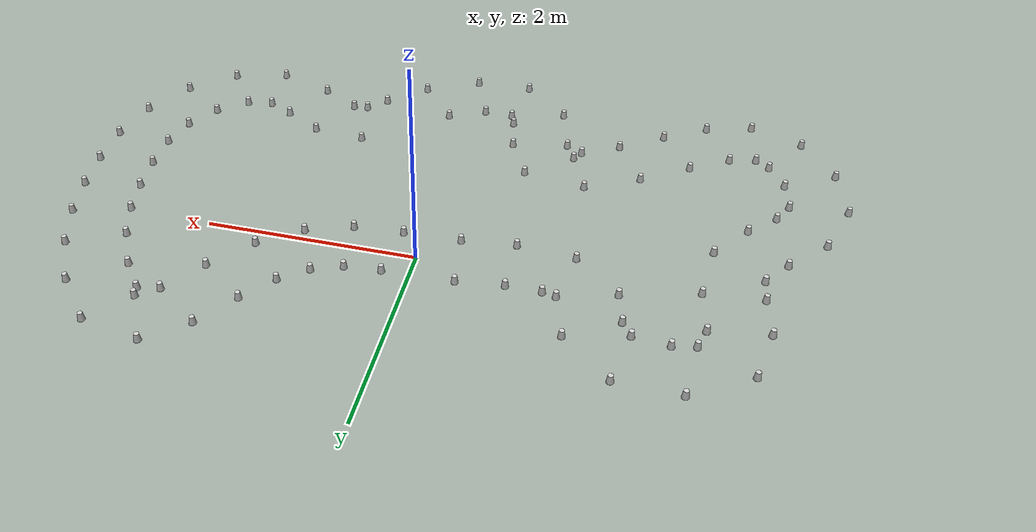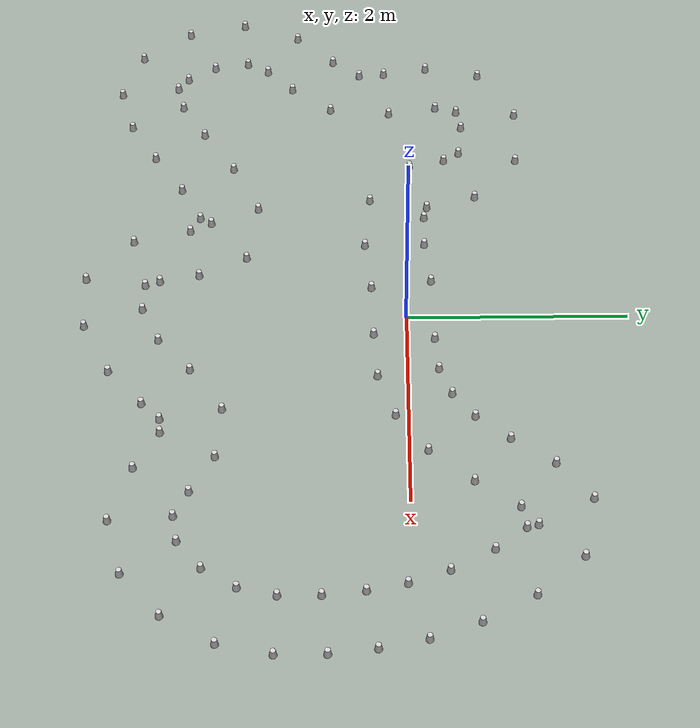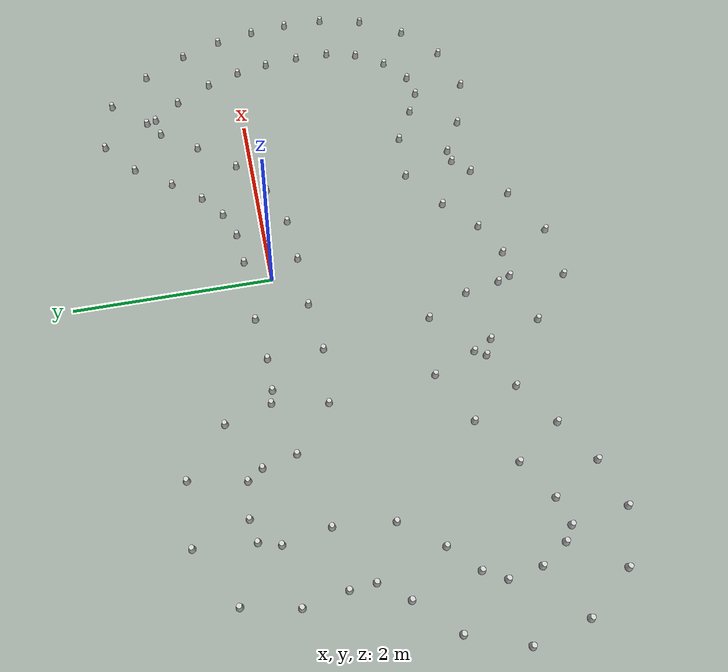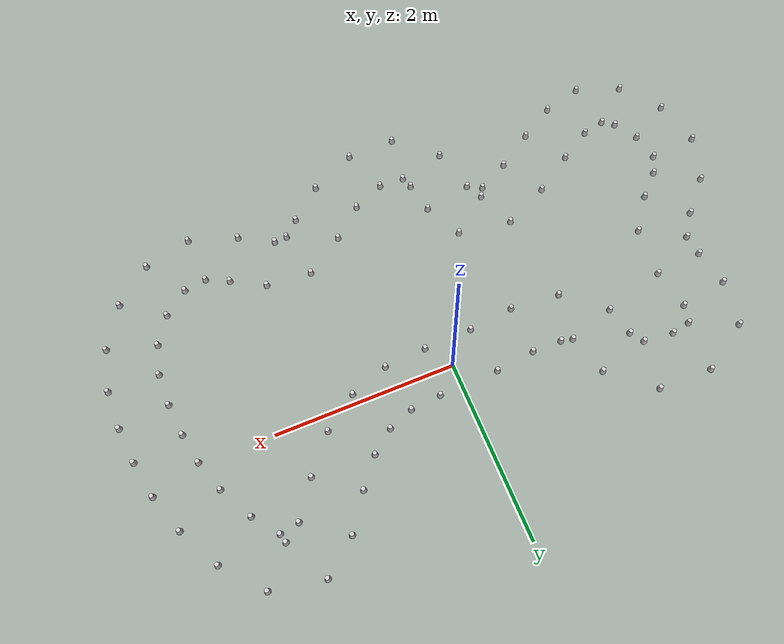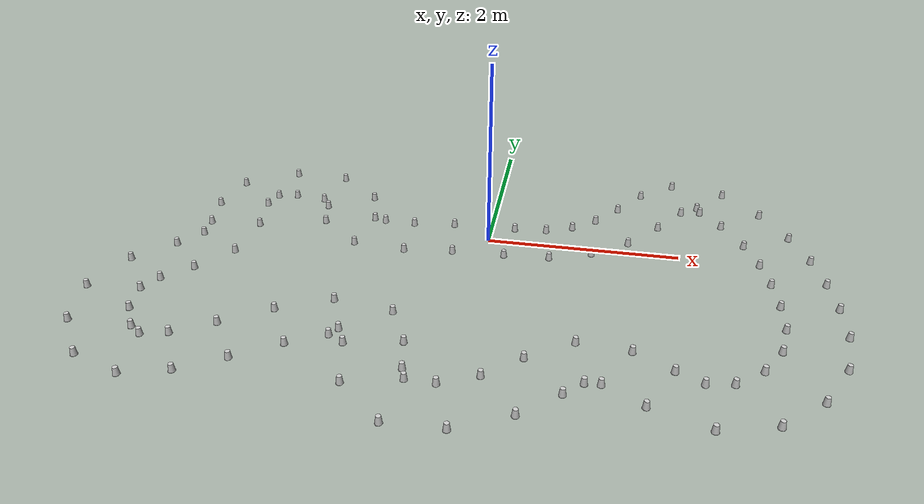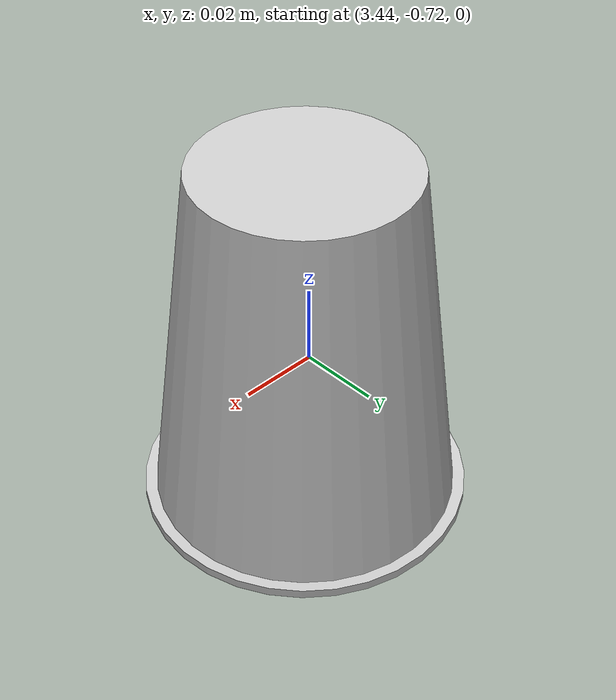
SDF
<?xml version='1.0' encoding='UTF-8'?>
<sdf version="1.4">
  <model name="some track">
    <include>
      <uri>model://cone_yellow</uri>
      <pose>0.1988275189589861 -0.29576511608822 0 0 0 0</pose>
      <name>cone_right_0</name>
    </include>
    <include>
      <uri>model://cone_yellow</uri>
      <pose>0.6696341616640438 -0.26491270518510013 0 0 0 0</pose>
      <name>cone_right_1</name>
    </include>
    <include>
      <uri>model://cone_yellow</uri>
      <pose>1.1004261335335566 -0.11217319267272571 0 0 0 0</pose>
      <name>cone_right_2</name>
    </include>
    <include>
      <uri>model://cone_yellow</uri>
      <pose>1.478573687063939 0.16465614905622017 0 0 0 0</pose>
      <name>cone_right_3</name>
    </include>
    <include>
      <uri>model://cone_yellow</uri>
      <pose>1.8005107312177255 0.5505216996905153 0 0 0 0</pose>
      <name>cone_right_4</name>
    </include>
    <include>
      <uri>model://cone_yellow</uri>
      <pose>2.067354395802949 0.9315547755825158 0 0 0 0</pose>
      <name>cone_right_5</name>
    </include>
    <include>
      <uri>model://cone_yellow</uri>
      <pose>2.249457929534375 1.0683764420313393 0 0 0 0</pose>
      <name>cone_right_6</name>
    </include>
    <include>
      <uri>model://cone_yellow</uri>
      <pose>2.275179273962964 0.969632531827274 0 0 0 0</pose>
      <name>cone_right_7</name>
    </include>
    <include>
      <uri>model://cone_yellow</uri>
      <pose>2.48731289048625 0.6962438414599963 0 0 0 0</pose>
      <name>cone_right_8</name>
    </include>
    <include>
      <uri>model://cone_yellow</uri>
      <pose>2.689026071638628 0.3193873764353247 0 0 0 0</pose>
      <name>cone_right_9</name>
    </include>
    <include>
      <uri>model://cone_yellow</uri>
      <pose>2.8126661601192176 -0.03343255558440286 0 0 0 0</pose>
      <name>cone_right_10</name>
    </include>
    <include>
      <uri>model://cone_yellow</uri>
      <pose>2.8812387136260225 -0.3772384883664753 0 0 0 0</pose>
      <name>cone_right_11</name>
    </include>
    <include>
      <uri>model://cone_yellow</uri>
      <pose>2.9213577538996303 -0.7437806817480641 0 0 0 0</pose>
      <name>cone_right_12</name>
    </include>
    <include>
      <uri>model://cone_yellow</uri>
      <pose>2.922138235468108 -1.1094339618953752 0 0 0 0</pose>
      <name>cone_right_13</name>
    </include>
    <include>
      <uri>model://cone_yellow</uri>
      <pose>2.8427176408587744 -1.4425361449432699 0 0 0 0</pose>
      <name>cone_right_14</name>
    </include>
    <include>
      <uri>model://cone_yellow</uri>
      <pose>2.6548703380218885 -1.7433312806151555 0 0 0 0</pose>
      <name>cone_right_15</name>
    </include>
    <include>
      <uri>model://cone_yellow</uri>
      <pose>2.388152420267223 -1.9586136310541635 0 0 0 0</pose>
      <name>cone_right_16</name>
    </include>
    <include>
      <uri>model://cone_yellow</uri>
      <pose>2.1373012560654523 -1.999391551072497 0 0 0 0</pose>
      <name>cone_right_17</name>
    </include>
    <include>
      <uri>model://cone_yellow</uri>
      <pose>1.8920212236398 -1.876843366306812 0 0 0 0</pose>
      <name>cone_right_18</name>
    </include>
    <include>
      <uri>model://cone_yellow</uri>
      <pose>1.5292710419879616 -1.6702764793476783 0 0 0 0</pose>
      <name>cone_right_19</name>
    </include>
    <include>
      <uri>model://cone_yellow</uri>
      <pose>1.0240276393759478 -1.6269627157081512 0 0 0 0</pose>
      <name>cone_right_20</name>
    </include>
    <include>
      <uri>model://cone_yellow</uri>
      <pose>0.5892466370784701 -1.9257541432241643 0 0 0 0</pose>
      <name>cone_right_21</name>
    </include>
    <include>
      <uri>model://cone_yellow</uri>
      <pose>0.250976784596718 -2.224629569718763 0 0 0 0</pose>
      <name>cone_right_22</name>
    </include>
    <include>
      <uri>model://cone_yellow</uri>
      <pose>-0.10549330255491296 -2.385936186840274 0 0 0 0</pose>
      <name>cone_right_23</name>
    </include>
    <include>
      <uri>model://cone_yellow</uri>
      <pose>-0.3877479345921508 -2.3757527250448307 0 0 0 0</pose>
      <name>cone_right_24</name>
    </include>
    <include>
      <uri>model://cone_yellow</uri>
      <pose>-0.4328026240077577 -2.244745992576913 0 0 0 0</pose>
      <name>cone_right_25</name>
    </include>
    <include>
      <uri>model://cone_yellow</uri>
      <pose>-0.5017454618362109 -1.8886642571496879 0 0 0 0</pose>
      <name>cone_right_26</name>
    </include>
    <include>
      <uri>model://cone_yellow</uri>
      <pose>-0.7075696544246372 -1.4597034508885602 0 0 0 0</pose>
      <name>cone_right_27</name>
    </include>
    <include>
      <uri>model://cone_yellow</uri>
      <pose>-1.312971773285747 -1.3668817337472583 0 0 0 0</pose>
      <name>cone_right_28</name>
    </include>
    <include>
      <uri>model://cone_yellow</uri>
      <pose>-1.8292101310521995 -1.614574961932526 0 0 0 0</pose>
      <name>cone_right_29</name>
    </include>
    <include>
      <uri>model://cone_yellow</uri>
      <pose>-2.2815414466390322 -1.9087867119301134 0 0 0 0</pose>
      <name>cone_right_30</name>
    </include>
    <include>
      <uri>model://cone_yellow</uri>
      <pose>-2.6539410010885267 -2.1311763426815804 0 0 0 0</pose>
      <name>cone_right_31</name>
    </include>
    <include>
      <uri>model://cone_yellow</uri>
      <pose>-2.911773890355478 -2.1927423226869456 0 0 0 0</pose>
      <name>cone_right_32</name>
    </include>
    <include>
      <uri>model://cone_yellow</uri>
      <pose>-3.0425935645850166 -2.0984135288440684 0 0 0 0</pose>
      <name>cone_right_33</name>
    </include>
    <include>
      <uri>model://cone_yellow</uri>
      <pose>-3.201195268847548 -1.8383048991844158 0 0 0 0</pose>
      <name>cone_right_34</name>
    </include>
    <include>
      <uri>model://cone_yellow</uri>
      <pose>-3.2556186123603976 -1.5162212111869535 0 0 0 0</pose>
      <name>cone_right_35</name>
    </include>
    <include>
      <uri>model://cone_yellow</uri>
      <pose>-3.1461559568503885 -1.3145737666766437 0 0 0 0</pose>
      <name>cone_right_36</name>
    </include>
    <include>
      <uri>model://cone_yellow</uri>
      <pose>-2.894749010851062 -1.0691156432634346 0 0 0 0</pose>
      <name>cone_right_37</name>
    </include>
    <include>
      <uri>model://cone_yellow</uri>
      <pose>-2.6102504265091606 -0.692942171421458 0 0 0 0</pose>
      <name>cone_right_38</name>
    </include>
    <include>
      <uri>model://cone_yellow</uri>
      <pose>-2.5537825610118228 -0.1260728643715388 0 0 0 0</pose>
      <name>cone_right_39</name>
    </include>
    <include>
      <uri>model://cone_yellow</uri>
      <pose>-2.6288406626750547 0.32756512917090447 0 0 0 0</pose>
      <name>cone_right_40</name>
    </include>
    <include>
      <uri>model://cone_yellow</uri>
      <pose>-2.5707583390659434 0.5310704402992645 0 0 0 0</pose>
      <name>cone_right_41</name>
    </include>
    <include>
      <uri>model://cone_yellow</uri>
      <pose>-2.358020035678961 0.5719439911957973 0 0 0 0</pose>
      <name>cone_right_42</name>
    </include>
    <include>
      <uri>model://cone_yellow</uri>
      <pose>-2.0188464912805832 0.5368809701956367 0 0 0 0</pose>
      <name>cone_right_43</name>
    </include>
    <include>
      <uri>model://cone_yellow</uri>
      <pose>-1.9237195483654574 0.3914882140836342 0 0 0 0</pose>
      <name>cone_right_44</name>
    </include>
    <include>
      <uri>model://cone_yellow</uri>
      <pose>-1.849562622685685 0.062238912862124615 0 0 0 0</pose>
      <name>cone_right_45</name>
    </include>
    <include>
      <uri>model://cone_yellow</uri>
      <pose>-1.4125548750441195 -0.3176125535710472 0 0 0 0</pose>
      <name>cone_right_46</name>
    </include>
    <include>
      <uri>model://cone_yellow</uri>
      <pose>-0.8550175847953118 -0.36791540703025316 0 0 0 0</pose>
      <name>cone_right_47</name>
    </include>
    <include>
      <uri>model://cone_yellow</uri>
      <pose>-0.344796184995294 -0.311553601814133 0 0 0 0</pose>
      <name>cone_right_48</name>
    </include>
    <include>
      <uri>model://cone_blue</uri>
      <pose>0.2523807274147874 0.2516214510323932 0 0 0 0</pose>
      <name>cone_left_0</name>
    </include>
    <include>
      <uri>model://cone_blue</uri>
      <pose>0.5940569259746471 0.27986989498266357 0 0 0 0</pose>
      <name>cone_left_1</name>
    </include>
    <include>
      <uri>model://cone_blue</uri>
      <pose>0.872324774572881 0.3882963568907748 0 0 0 0</pose>
      <name>cone_left_2</name>
    </include>
    <include>
      <uri>model://cone_blue</uri>
      <pose>1.119600238128676 0.5813551566858548 0 0 0 0</pose>
      <name>cone_left_3</name>
    </include>
    <include>
      <uri>model://cone_blue</uri>
      <pose>1.3593736301157024 0.8790000978102448 0 0 0 0</pose>
      <name>cone_left_4</name>
    </include>
    <include>
      <uri>model://cone_blue</uri>
      <pose>1.62190767826895 1.2541647906753304 0 0 0 0</pose>
      <name>cone_left_5</name>
    </include>
    <include>
      <uri>model://cone_blue</uri>
      <pose>1.9881012125886426 1.5523110104466866 0 0 0 0</pose>
      <name>cone_left_6</name>
    </include>
    <include>
      <uri>model://cone_blue</uri>
      <pose>2.5630295924372106 1.4382925302848708 0 0 0 0</pose>
      <name>cone_left_7</name>
    </include>
    <include>
      <uri>model://cone_blue</uri>
      <pose>2.9313011151554096 1.0208581608532228 0 0 0 0</pose>
      <name>cone_left_8</name>
    </include>
    <include>
      <uri>model://cone_blue</uri>
      <pose>3.1827097679961276 0.5618258386289219 0 0 0 0</pose>
      <name>cone_left_9</name>
    </include>
    <include>
      <uri>model://cone_blue</uri>
      <pose>3.3378425766095354 0.12993736686887092 0 0 0 0</pose>
      <name>cone_left_10</name>
    </include>
    <include>
      <uri>model://cone_blue</uri>
      <pose>3.423280857247542 -0.284016631818841 0 0 0 0</pose>
      <name>cone_left_11</name>
    </include>
    <include>
      <uri>model://cone_blue</uri>
      <pose>3.46888371594725 -0.6916719407939007 0 0 0 0</pose>
      <name>cone_left_12</name>
    </include>
    <include>
      <uri>model://cone_blue</uri>
      <pose>3.471782724465998 -1.1292060562267385 0 0 0 0</pose>
      <name>cone_left_13</name>
    </include>
    <include>
      <uri>model://cone_blue</uri>
      <pose>3.369274518125601 -1.6014004109158564 0 0 0 0</pose>
      <name>cone_left_14</name>
    </include>
    <include>
      <uri>model://cone_blue</uri>
      <pose>3.103693110961573 -2.061227676459355 0 0 0 0</pose>
      <name>cone_left_15</name>
    </include>
    <include>
      <uri>model://cone_blue</uri>
      <pose>2.7016285962785136 -2.4105347381882942 0 0 0 0</pose>
      <name>cone_left_16</name>
    </include>
    <include>
      <uri>model://cone_blue</uri>
      <pose>2.17750751956934 -2.547919997349494 0 0 0 0</pose>
      <name>cone_left_17</name>
    </include>
    <include>
      <uri>model://cone_blue</uri>
      <pose>1.6415135317443024 -2.3664819026795025 0 0 0 0</pose>
      <name>cone_left_18</name>
    </include>
    <include>
      <uri>model://cone_blue</uri>
      <pose>1.2706508972356172 -2.1556790140838253 0 0 0 0</pose>
      <name>cone_left_19</name>
    </include>
    <include>
      <uri>model://cone_blue</uri>
      <pose>1.1274163855527297 -2.167157835238116 0 0 0 0</pose>
      <name>cone_left_20</name>
    </include>
    <include>
      <uri>model://cone_blue</uri>
      <pose>0.9575914729186912 -2.334192733357174 0 0 0 0</pose>
      <name>cone_left_21</name>
    </include>
    <include>
      <uri>model://cone_blue</uri>
      <pose>0.599989152327844 -2.649706465316152 0 0 0 0</pose>
      <name>cone_left_22</name>
    </include>
    <include>
      <uri>model://cone_blue</uri>
      <pose>0.08448712378832182 -2.9020829078474337 0 0 0 0</pose>
      <name>cone_left_23</name>
    </include>
    <include>
      <uri>model://cone_blue</uri>
      <pose>-0.46637677582785225 -2.920103260385737 0 0 0 0</pose>
      <name>cone_left_24</name>
    </include>
    <include>
      <uri>model://cone_blue</uri>
      <pose>-0.914299469711786 -2.5105669616088377 0 0 0 0</pose>
      <name>cone_left_25</name>
    </include>
    <include>
      <uri>model://cone_blue</uri>
      <pose>-1.0418233348421906 -1.9926637335394128 0 0 0 0</pose>
      <name>cone_left_26</name>
    </include>
    <include>
      <uri>model://cone_blue</uri>
      <pose>-1.138755739703697 -1.8011394769047373 0 0 0 0</pose>
      <name>cone_left_27</name>
    </include>
    <include>
      <uri>model://cone_blue</uri>
      <pose>-1.2011586455897665 -1.9053961945325213 0 0 0 0</pose>
      <name>cone_left_28</name>
    </include>
    <include>
      <uri>model://cone_blue</uri>
      <pose>-1.559734519779389 -2.094036008243011 0 0 0 0</pose>
      <name>cone_left_29</name>
    </include>
    <include>
      <uri>model://cone_blue</uri>
      <pose>-1.9762768923669372 -2.3662946920846233 0 0 0 0</pose>
      <name>cone_left_30</name>
    </include>
    <include>
      <uri>model://cone_blue</uri>
      <pose>-2.3883863766733904 -2.6128201337260992 0 0 0 0</pose>
      <name>cone_left_31</name>
    </include>
    <include>
      <uri>model://cone_blue</uri>
      <pose>-2.8383082676809512 -2.7378136962565396 0 0 0 0</pose>
      <name>cone_left_32</name>
    </include>
    <include>
      <uri>model://cone_blue</uri>
      <pose>-3.3454063847994724 -2.557547927374354 0 0 0 0</pose>
      <name>cone_left_33</name>
    </include>
    <include>
      <uri>model://cone_blue</uri>
      <pose>-3.681869883793115 -2.105609808505084 0 0 0 0</pose>
      <name>cone_left_34</name>
    </include>
    <include>
      <uri>model://cone_blue</uri>
      <pose>-3.8036387078071567 -1.5628471158594142 0 0 0 0</pose>
      <name>cone_left_35</name>
    </include>
    <include>
      <uri>model://cone_blue</uri>
      <pose>-3.614887754242832 -1.026840379470276 0 0 0 0</pose>
      <name>cone_left_36</name>
    </include>
    <include>
      <uri>model://cone_blue</uri>
      <pose>-3.2749270712451257 -0.6716679833193765 0 0 0 0</pose>
      <name>cone_left_37</name>
    </include>
    <include>
      <uri>model://cone_blue</uri>
      <pose>-3.0830958930089056 -0.41202018080726843 0 0 0 0</pose>
      <name>cone_left_38</name>
    </include>
    <include>
      <uri>model://cone_blue</uri>
      <pose>-3.1019873419546737 -0.1704746453200654 0 0 0 0</pose>
      <name>cone_left_39</name>
    </include>
    <include>
      <uri>model://cone_blue</uri>
      <pose>-3.172577397000584 0.2447982049498786 0 0 0 0</pose>
      <name>cone_left_40</name>
    </include>
    <include>
      <uri>model://cone_blue</uri>
      <pose>-3.0715456273424615 0.7584733688218572 0 0 0 0</pose>
      <name>cone_left_41</name>
    </include>
    <include>
      <uri>model://cone_blue</uri>
      <pose>-2.524784178902851 1.0960524919232724 0 0 0 0</pose>
      <name>cone_left_42</name>
    </include>
    <include>
      <uri>model://cone_blue</uri>
      <pose>-1.918653534049958 1.0776779481100682 0 0 0 0</pose>
      <name>cone_left_43</name>
    </include>
    <include>
      <uri>model://cone_blue</uri>
      <pose>-1.450512202316901 0.6718001967844842 0 0 0 0</pose>
      <name>cone_left_44</name>
    </include>
    <include>
      <uri>model://cone_blue</uri>
      <pose>-1.321568294389487 0.2162583573717286 0 0 0 0</pose>
      <name>cone_left_45</name>
    </include>
    <include>
      <uri>model://cone_blue</uri>
      <pose>-1.1922373376777058 0.18633206910965855 0 0 0 0</pose>
      <name>cone_left_46</name>
    </include>
    <include>
      <uri>model://cone_blue</uri>
      <pose>-0.860965399269492 0.1820524315775883 0 0 0 0</pose>
      <name>cone_left_47</name>
    </include>
    <include>
      <uri>model://cone_blue</uri>
      <pose>-0.41716875959416116 0.2336639790156963 0 0 0 0</pose>
      <name>cone_left_48</name>
    </include>

  </model>
</sdf>

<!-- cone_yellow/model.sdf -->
<sdf version='1.4'>
  <model name="cone_yellow">
    <link name="link">
    <collision name="collision"><geometry><box><size> 0.05 0.05 0.01</size>
             </box></geometry></collision>
      <visual name="visual">
        <geometry>
          <mesh>
            <uri>model://cup.dae</uri>
            <scale>1 1 1</scale>
          </mesh>
        </geometry>
        <material>
            <script>
              <uri>model://cone_yellow/materials/scripts</uri>
              <uri>model://cone_yellow/materials/textures</uri>
              <name>cone_yellow/Image</name>
            </script>
        </material>
      </visual>
    </link>
  </model>
</sdf>

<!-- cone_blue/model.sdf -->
<sdf version='1.4'>
  <model name="cone_blue">
    <link name="link">
    <collision name="collision"><geometry><box><size> 0.05 0.05 0.01</size>
             </box></geometry></collision>
      <visual name="visual">
        <geometry>
          <mesh>
            <uri>model://cup.dae</uri>
            <scale>1 1 1</scale>
          </mesh>
        </geometry>
        <material>
            <script>
              <uri>model://cone_blue/materials/scripts</uri>
              <uri>model://cone_blue/materials/textures</uri>
              <name>cone_blue/Image</name>
            </script>
        </material>
      </visual>
    </link>
  </model>
</sdf>
